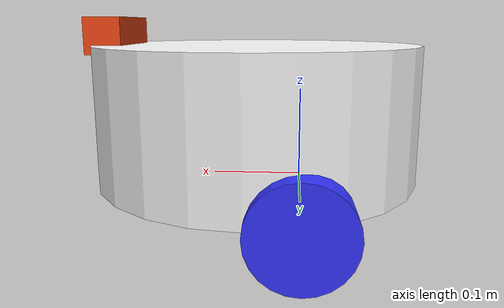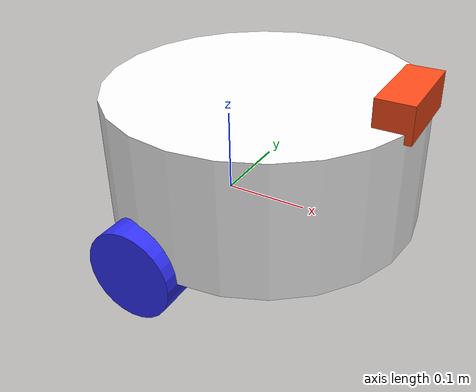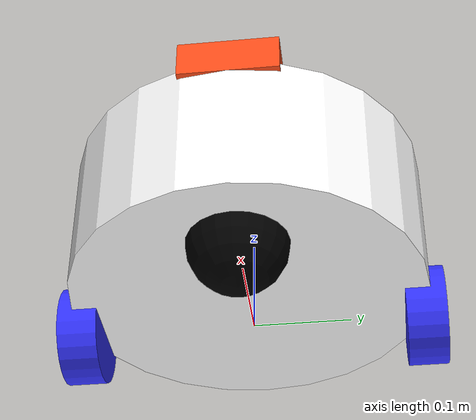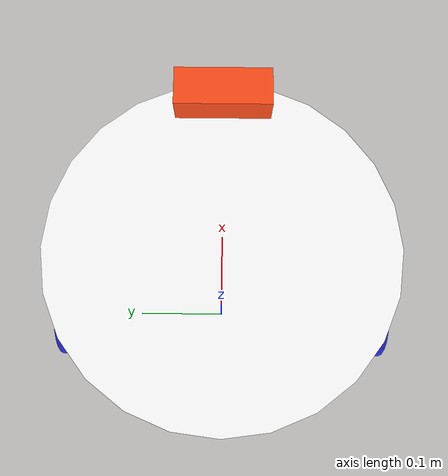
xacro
<?xml version="1.0"?>
<robot xmlns:xacro="http://www.ros.org/wiki/xacro" >

    <xacro:include filename="inertial_macros.xacro"/>

    <material name="white">
        <color rgba="1 1 1 1" />
    </material>

    <material name="orange">
        <color rgba="1 0.3 0.1 1"/>
    </material>

    <material name="blue">
        <color rgba="0.2 0.2 1 1"/>
    </material>

    <material name="black">
        <color rgba="0 0 0 1"/>
    </material>

    <material name="red">
        <color rgba="1 0 0 1"/>
    </material>

    <!-- BASE LINK -->

    <link name="base_link">

    </link>

    <!-- CHASSIS LINK -->

    <joint name="chassis_joint" type="fixed">
        <parent link="base_link"/>
        <child link="chassis"/>
        <origin xyz="-0.1 0 0"/>
    </joint>

    <link name="chassis">
        <visual>
            <origin xyz="0.15 0 0.075" rpy="0 0 0"/>
            <geometry>
                <cylinder radius="0.18" length="0.15"/>
            </geometry>
            <material name="white"/>
        </visual>
        <collision>
            <origin xyz="0.15 0 0.075" rpy="0 0 0"/>
            <geometry>
                <cylinder radius="0.18" length="0.15"/>
            </geometry>
        </collision>
        <xacro:inertial_cylinder mass="0.5" length="0.15" radius="0.18">
            <origin xyz="0.15 0 0.075" rpy="0 0 0"/>
        </xacro:inertial_cylinder>
    </link>

    <!-- FRONT INDICATOR -->
    <joint name="front_indicator_joint" type="fixed">
        <parent link="chassis"/>
        <child link="front_indicator"/>
        <origin xyz="0.31 0 0.16" rpy="0 0 0"/>
    </joint>
    <link name="front_indicator">
        <visual>
            <geometry>
                <box size="0.04 0.1 0.04"/>
            </geometry>
            <material name="orange"/>
        </visual>
    </link>
    <gazebo reference="front_indicator">
        <material>Gazebo/Orange</material>
    </gazebo>

    <gazebo reference="chassis">
        <material>Gazebo/White</material>
    </gazebo>

    <!-- LEFT WHEEL LINK -->

    <joint name="left_wheel_joint" type="continuous">
        <parent link="base_link"/>
        <child link="left_wheel"/>
        <origin xyz="0 0.175 0" rpy="-${pi/2} 0 0" />
        <axis xyz="0 0 1"/>
    </joint>

    <link name="left_wheel">
        <visual>
            <geometry>
                <cylinder radius="0.05" length="0.04"/>
            </geometry>
            <material name="blue"/>
        </visual>
        <collision>
            <geometry>
                <cylinder radius="0.05" length="0.04"/>
            </geometry>
        </collision>
        <xacro:inertial_cylinder mass="0.1" length="0.04" radius="0.05">
            <origin xyz="0 0 0" rpy="0 0 0"/>
        </xacro:inertial_cylinder>
    </link>

    <gazebo reference="left_wheel">
        <material>Gazebo/Blue</material>
    </gazebo>

    <!-- RIGHT WHEEL LINK -->

    <joint name="right_wheel_joint" type="continuous">
        <parent link="base_link"/>
        <child link="right_wheel"/>
        <origin xyz="0 -0.175 0" rpy="${pi/2} 0 0" />
        <axis xyz="0 0 -1"/>
    </joint>

    <link name="right_wheel">
        <visual>
            <geometry>
                <cylinder radius="0.05" length="0.04"/>
            </geometry>
            <material name="blue"/>
        </visual>
        <collision>
            <geometry>
                <cylinder radius="0.05" length="0.04"/>
            </geometry>
        </collision>
        <xacro:inertial_cylinder mass="0.1" length="0.04" radius="0.05">
            <origin xyz="0 0 0" rpy="0 0 0"/>
        </xacro:inertial_cylinder>
    </link>

    <gazebo reference="right_wheel">
        <material>Gazebo/Blue</material>
    </gazebo>

    <!-- CASTER WHEEL LINK -->

    <joint name="caster_wheel_joint" type="fixed">
        <parent link="chassis"/>
        <child link="caster_wheel"/>
        <origin xyz="0.24 0 0"/>
    </joint>

    <link name="caster_wheel">
        <visual>
            <geometry>
                <sphere radius="0.05"/>
            </geometry>
            <material name="black"/>
        </visual>
        <collision>
            <geometry>
                <sphere radius="0.05"/>
            </geometry>
        </collision>
        <xacro:inertial_sphere mass="0.1" radius="0.05">
            <origin xyz="0 0 0" rpy="0 0 0"/>
        </xacro:inertial_sphere>
    </link>

    <gazebo reference="caster_wheel">
        <material>Gazebo/Black</material>
        <mu1 value="0.001"/>
        <mu2 value="0.001"/>
    </gazebo>

</robot>

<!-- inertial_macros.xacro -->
<robot xmlns:xacro="http://www.ros.org/wiki/xacro" >

    <!-- Specify some standard inertial calculations https://en.wikipedia.org/wiki/List_of_moments_of_inertia -->
    <!-- These make use of xacro's mathematical functionality -->

    <xacro:macro name="inertial_sphere" params="mass radius *origin">
        <inertial>
            <xacro:insert_block name="origin"/>
            <mass value="${mass}" />
            <inertia ixx="${(2/5) * mass * (radius*radius)}" ixy="0.0" ixz="0.0"
                    iyy="${(2/5) * mass * (radius*radius)}" iyz="0.0"
                    izz="${(2/5) * mass * (radius*radius)}" />
        </inertial>
    </xacro:macro>

    <xacro:macro name="inertial_box" params="mass x y z *origin">
        <inertial>
            <xacro:insert_block name="origin"/>
            <mass value="${mass}" />
            <inertia ixx="${(1/12) * mass * (y*y + z*z)}" ixy="0.0" ixz="0.0"
                    iyy="${(1/12) * mass * (x*x + z*z)}" iyz="0.0"
                    izz="${(1/12) * mass * (x*x + y*y)}" />
        </inertial>
    </xacro:macro>

    <xacro:macro name="inertial_cylinder" params="mass length radius *origin">
        <inertial>
            <xacro:insert_block name="origin"/>
            <mass value="${mass}" />
            <inertia ixx="${(1/12) * mass * (3*radius*radius + length*length)}" ixy="0.0" ixz="0.0"
                    iyy="${(1/12) * mass * (3*radius*radius + length*length)}" iyz="0.0"
                    izz="${(1/2) * mass * (radius*radius)}" />
        </inertial>
    </xacro:macro>

</robot>
